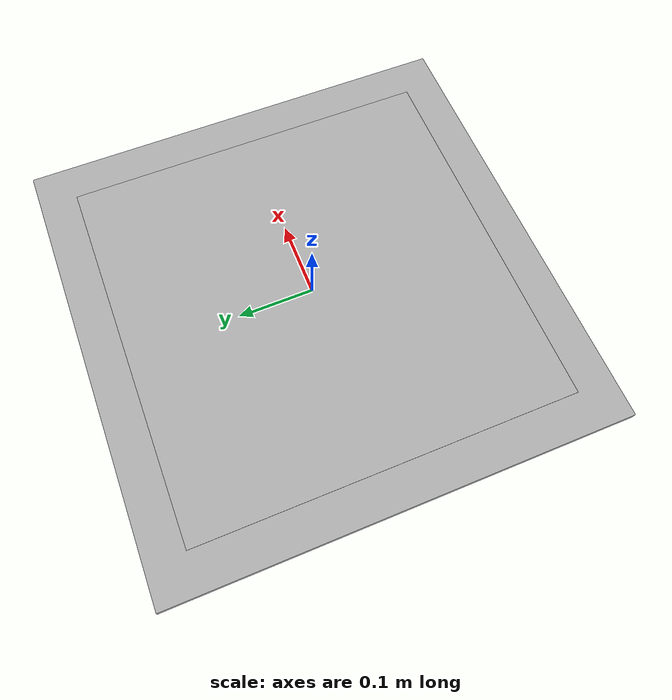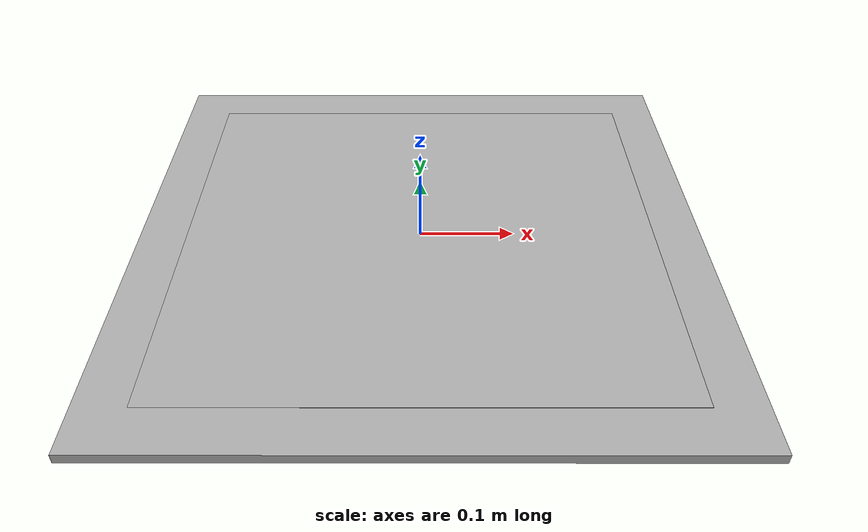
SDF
<sdf version='1.7'>
  <model name='my_aruco'>
    <link name='DICT_4X4_50_id0_link_0'>
      <inertial>
        <pose>0 0 0 0 -0 0</pose>
        <mass>1</mass>
        <inertia>
          <ixx>0.0741667</ixx>
          <ixy>0</ixy>
          <ixz>0</ixz>
          <iyy>0.0585417</iyy>
          <iyz>0</iyz>
          <izz>0.0260417</izz>
        </inertia>
      </inertial>
      <visual name='DICT_4X4_50_id0_link_0_visual'>
        <pose>0 0 0 0 -0 0</pose>
        <geometry>
          <box>
            <size>0.6 0.6 0.01</size>
          </box>
        </geometry>
      </visual>
      <visual name='DICT_4X4_50_id0_link_0_visual_1'>
        <pose>0 0 0 0 -0 0</pose>
        <geometry>
          <mesh>
            <scale>5.55556 5.55556 1.05556</scale>
            <uri>model://aruco_id0_small/meshes/DICT_4X4_50/DICT_4X4_50_id0.dae</uri>
          </mesh>
        </geometry>
      </visual>
      <gravity>0</gravity>
    </link>
  </model>
</sdf>
